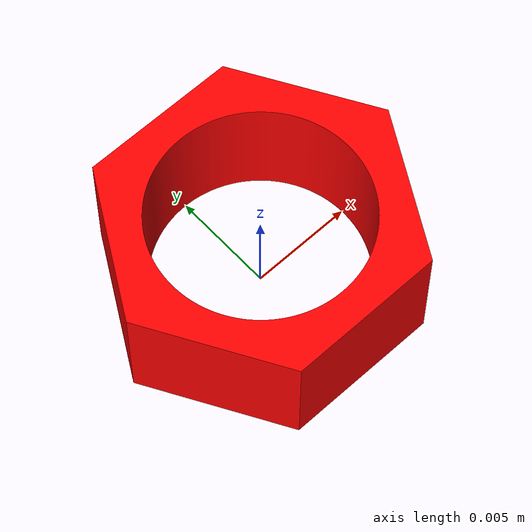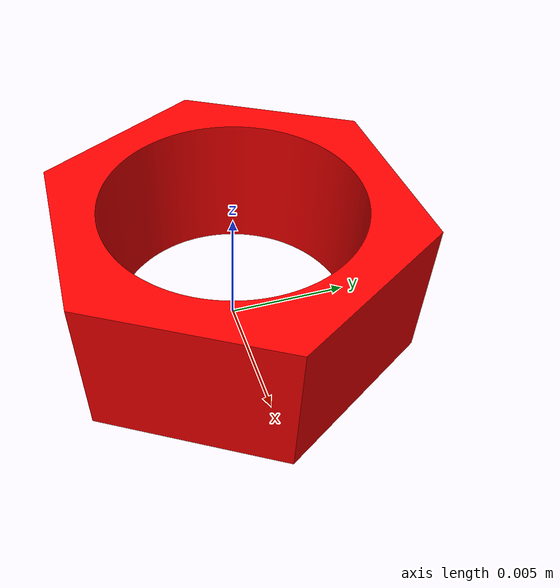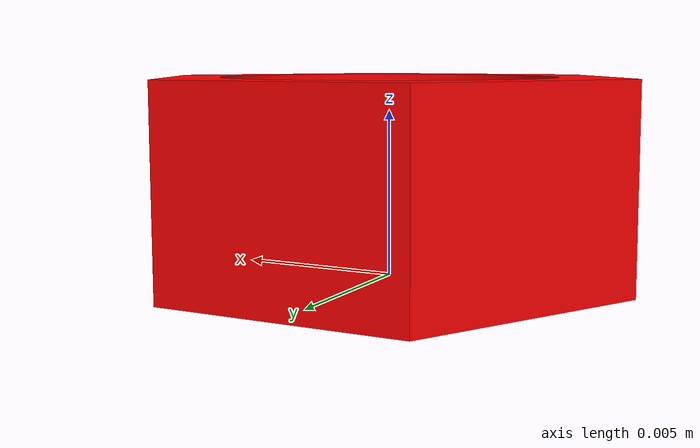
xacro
<?xml version="1.0"?>
<robot name="tuerca_robot">

     <link name="tuerca">
      <inertial>
        <mass value="0.00001" />
        <origin rpy="0.0 0.0 0.0" xyz="0.0 0.0 0.0" />
        <inertia ixx="0.00000007" ixy="0.0" ixz="0.0" iyy="0.00000007" iyz="0.0" izz="0.00000012" />
      </inertial>
      <collision>
        <origin rpy="0.0 0.0 0.0" xyz="0.0 0.0 0.0" />
        <geometry>
          <mesh filename="package://proyecto_intermedio_robotica/meshes/tuerca_colision_2.stl" scale="0.01 0.01 0.01"/>
        </geometry>
      </collision>
      <visual>
        <origin rpy="0.0 0.0 0.0" xyz="0.0 0.0 0.0" />
        <geometry>
          <mesh filename="package://proyecto_intermedio_robotica/meshes/tuerca.stl" scale="0.01 0.01 0.01"/>
        </geometry>
        <material name="red">
          <color rgba="1.0 0.0 0.0 1.0"/>
        </material>
      </visual>
    </link>
    <gazebo reference="tuerca">
      <turnGravityOff>true</turnGravityOff>
      <mu1>100.0</mu1>
      <mu2>100.0</mu2>
      <minDepth>0.003</minDepth>
      <maxVel>0</maxVel>
        <material>Gazebo/RedTransparentOverlay</material>
    </gazebo>

</robot>
